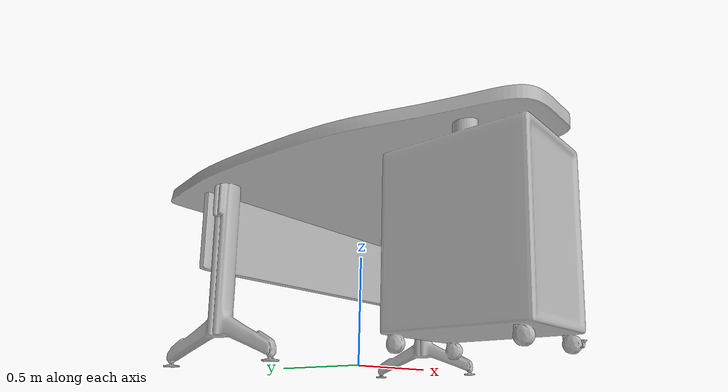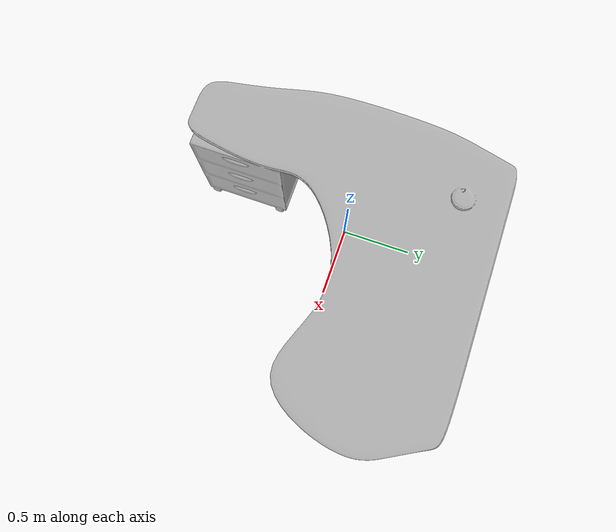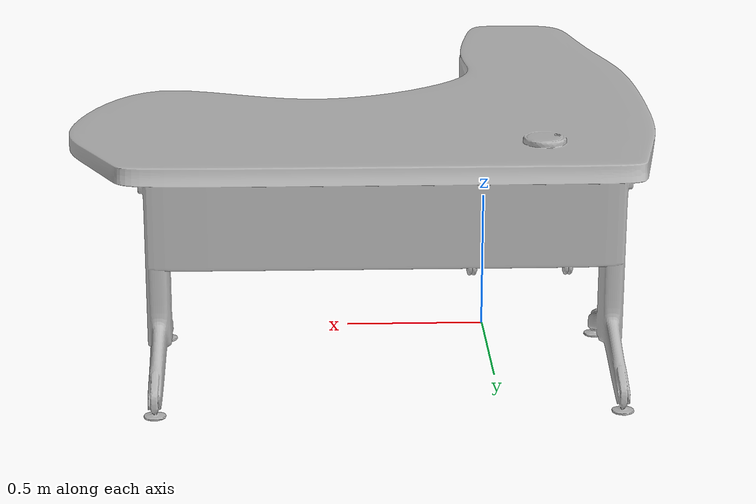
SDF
<?xml version='1.0'?>
<sdf version="1.4">
<model name="office_desk">
  <pose>0 0 0  1.57079632679 0 0</pose>
  <static>true</static>
    <link name="link">

      <collision name="collision">
        <geometry>
          <mesh><uri>model://office_desk/meshes/office_desk.dae</uri></mesh>
        </geometry>
      </collision>

      <visual name="visual">
        <geometry>
          <mesh><uri>model://office_desk/meshes/office_desk.dae</uri></mesh>
        </geometry>

        <material>
          <script>
            <uri>model://office_desk/materials/scripts</uri>
            <uri>model://office_desk/materials/textures</uri>
            <name>OfficeDesk/Diffuse</name>
          </script>
        </material>

      </visual>
    </link>
  </model>
</sdf>
